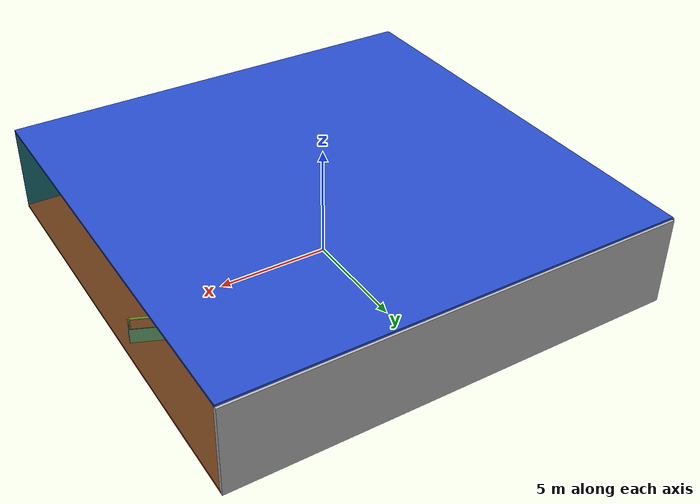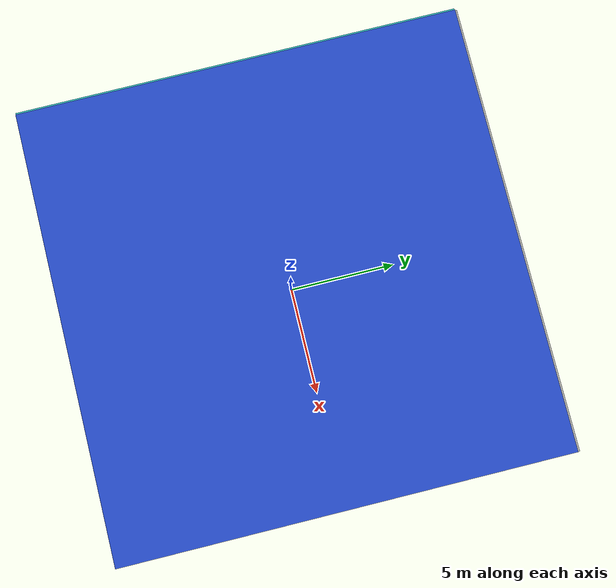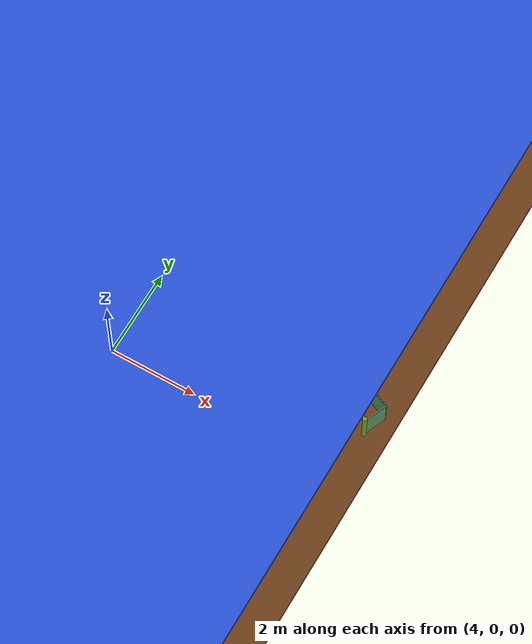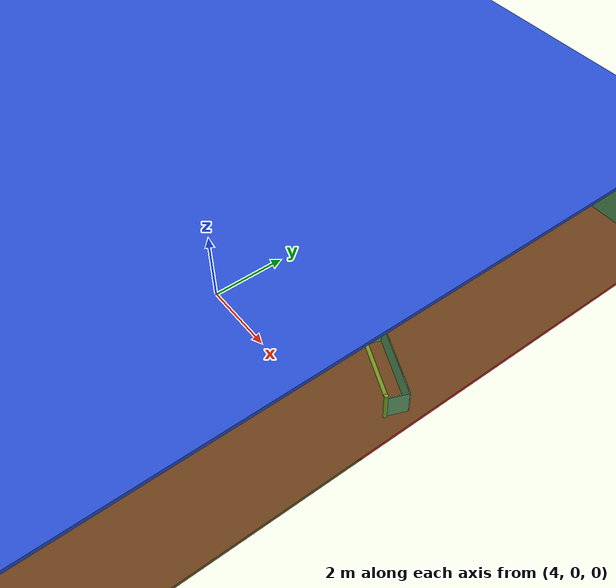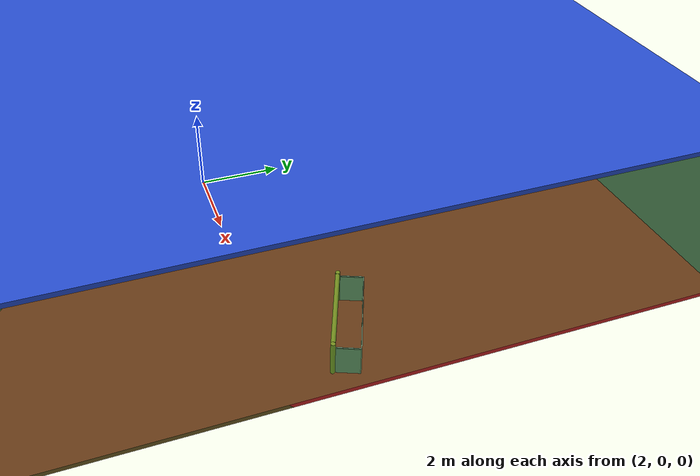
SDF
<sdf version="1.4">
 <world name="default">
  <physics type="ode">
   <max_step_size>0.001</max_step_size>
   <real_time_factor>1</real_time_factor>
   <real_time_update_rate>1000</real_time_update_rate>
   <gravity>0 0 -9.8</gravity>
  </physics>
  <scene><ambient>0.4 0.4 0.4 1</ambient><background>0.7 0.7 0.7 1</background><shadows>1</shadows></scene>
  <model name="Surrounding">
   <static>1</static>
   <link name="Ceiling">
    <collision name="Ceiling_Collision"><geometry><box><size>20 20 0.1</size></box></geometry></collision>
    <visual name="Ceiling_Visual">
     <geometry><box><size>20 20 0.1</size></box></geometry>
     <material>
      <script><uri>file://media/materials/scripts/gazebo.material</uri><name>Gazebo/Blue</name></script>
     </material>
    </visual>
    <pose>0 0 4.05 0 0 0</pose>
   </link>
   <link name="Wall_South">
    <collision name="Wall_South_Collision">
     <geometry><box><size>20 0 4</size></box></geometry>
     <pose>0 0 2 0 -0 0</pose>
    </collision>
    <visual name="Wall_South_Visual">
     <pose>0 0 2 0 -0 0</pose>
     <geometry><box><size>20 0 4</size></box></geometry>
     <material>
      <script><uri>file://media/materials/scripts/gazebo.material</uri><name>Gazebo/Blue</name></script>
     </material>
    </visual>
    <velocity_decay><linear>0</linear><angular>0</angular></velocity_decay>
    <pose>0 -10 0 0 -0 0</pose>
   </link>
   <link name="Wall_East">
    <collision name="Wall_21_Collision">
     <geometry><box><size>20 0 4</size></box></geometry>
     <pose>0 0 2 0 -0 0</pose>
    </collision>
    <visual name="Wall_21_Visual">
     <pose>0 0 2 0 -0 0</pose>
     <geometry><box><size>20 0 4</size></box></geometry>
     <material>
      <script><uri>file://media/materials/scripts/gazebo.material</uri><name>Gazebo/GreenTransparent</name></script>
     </material>
    </visual>
    <velocity_decay><linear>0</linear><angular>0</angular></velocity_decay>
    <pose>10 0 0 0 -0 1.5708</pose>
   </link>
   <link name="Wall_North">
    <collision name="Wall_22_Collision">
     <geometry><box><size>20 0.2 4</size></box></geometry>
     <pose>0 0 2 0 -0 0</pose>
    </collision>
    <visual name="Wall_22_Visual">
     <pose>0 0 2 0 -0 0</pose>
     <geometry><box><size>20 0.2 4</size></box></geometry>
     <material>
      <script><uri>file://media/materials/scripts/gazebo.material</uri><name>Gazebo/JointAnchor</name></script>
     </material>
    </visual>
    <velocity_decay><linear>0</linear><angular>0</angular></velocity_decay>
    <pose>0 10 0 0 -0 0</pose>
   </link>
   <link name="Wall_West">
    <collision name="Wall_23_Collision">
     <geometry><box><size>20 0.2 4</size></box></geometry>
     <pose>0 0 2 0 -0 0</pose>
    </collision>
    <visual name="Wall_23_Visual">
     <pose>0 0 2 0 -0 0</pose>
     <geometry><box><size>20 0.2 4</size></box></geometry>
     <material>
      <script>
       <uri>file://media/materials/scripts/gazebo.material</uri>
       <name>Gazebo/TurquoiseGlowOutline</name>
      </script>
     </material>
    </visual>
    <velocity_decay><linear>0</linear><angular>0</angular></velocity_decay>
    <pose>-10 0 0 0 0 -1.5708</pose>
   </link>
   <link name="Ground_link">
    <collision name="collision">
     <pose>0 0 .05 0 -0 0</pose>
     <geometry><box><size>20 20 0.1</size></box></geometry>
    </collision>
    <visual name="visual">
     <pose>0 0 .05 0 -0 0</pose>
     <geometry><box><size>20 20 0.1</size></box></geometry>
     <material>
      <script><uri>file://media/materials/scripts/gazebo.material</uri><name>Gazebo/Red</name></script>
     </material>
    </visual>
   </link>
   <static>1</static>
  </model>
  <spherical_coordinates>
   <surface_model>EARTH_WGS84</surface_model>
   <latitude_deg>0</latitude_deg>
   <longitude_deg>0</longitude_deg>
   <elevation>0</elevation>
   <heading_deg>0</heading_deg>
  </spherical_coordinates>
  <light name="lightball_0" type="diffuse">
   <diffuse>0.8 0.8 0.8 1</diffuse>
   <specular>0.2 0.2 0.2 1</specular>
   <attenuation>
    <range>100</range>
    <constant>0.7</constant>
    <linear>0.01</linear>
    <quadratic>0.001</quadratic>
   </attenuation>
   <direction>-0.5 0.1 -0.9</direction>
   <pose>3.50119790931 5.32081470234 2.78512986064 0 0 0</pose>
  </light>
  <light name="lightball_1" type="diffuse">
   <diffuse>0.8 0.8 0.8 1</diffuse>
   <specular>0.2 0.2 0.2 1</specular>
   <attenuation>
    <range>100</range>
    <constant>0.7</constant>
    <linear>0.01</linear>
    <quadratic>0.001</quadratic>
   </attenuation>
   <direction>-0.5 0.1 -0.9</direction>
   <pose>8.44965424475 8.66184790852 2.36571325492 0 0 0</pose>
  </light>
  <light name="lightball_2" type="diffuse">
   <diffuse>0.8 0.8 0.8 1</diffuse>
   <specular>0.2 0.2 0.2 1</specular>
   <attenuation>
    <range>100</range>
    <constant>0.7</constant>
    <linear>0.01</linear>
    <quadratic>0.001</quadratic>
   </attenuation>
   <direction>-0.5 0.1 -0.9</direction>
   <pose>-0.836341232605 -7.22521927968 1.11066572019 0 0 0</pose>
  </light>
  <light name="lightball_3" type="diffuse">
   <diffuse>0.8 0.8 0.8 1</diffuse>
   <specular>0.2 0.2 0.2 1</specular>
   <attenuation>
    <range>100</range>
    <constant>0.7</constant>
    <linear>0.01</linear>
    <quadratic>0.001</quadratic>
   </attenuation>
   <direction>-0.5 0.1 -0.9</direction>
   <pose>-4.23012802737 -2.10612162769 3.15321935908 0 0 0</pose>
  </light>
  <light name="lightball_4" type="diffuse">
   <diffuse>0.8 0.8 0.8 1</diffuse>
   <specular>0.2 0.2 0.2 1</specular>
   <attenuation>
    <range>100</range>
    <constant>0.7</constant>
    <linear>0.01</linear>
    <quadratic>0.001</quadratic>
   </attenuation>
   <direction>-0.5 0.1 -0.9</direction>
   <pose>-5.41193728455 -3.65732487104 1.94917376231 0 0 0</pose>
  </light>
  <light name="lightball_5" type="diffuse">
   <diffuse>0.8 0.8 0.8 1</diffuse>
   <specular>0.2 0.2 0.2 1</specular>
   <attenuation>
    <range>100</range>
    <constant>0.7</constant>
    <linear>0.01</linear>
    <quadratic>0.001</quadratic>
   </attenuation>
   <direction>-0.5 0.1 -0.9</direction>
   <pose>-8.50665162497 5.1799403215 1.39703823342 0 0 0</pose>
  </light>
  <light name="lightball_6" type="diffuse">
   <diffuse>0.8 0.8 0.8 1</diffuse>
   <specular>0.2 0.2 0.2 1</specular>
   <attenuation>
    <range>100</range>
    <constant>0.7</constant>
    <linear>0.01</linear>
    <quadratic>0.001</quadratic>
   </attenuation>
   <direction>-0.5 0.1 -0.9</direction>
   <pose>0.821688425762 9.77636713724 0.696725787968 0 0 0</pose>
  </light>
  <light name="lightball_7" type="diffuse">
   <diffuse>0.8 0.8 0.8 1</diffuse>
   <specular>0.2 0.2 0.2 1</specular>
   <attenuation>
    <range>100</range>
    <constant>0.7</constant>
    <linear>0.01</linear>
    <quadratic>0.001</quadratic>
   </attenuation>
   <direction>-0.5 0.1 -0.9</direction>
   <pose>-1.53489828173 -7.64871548964 3.1236561558 0 0 0</pose>
  </light>
  <light name="lightball_8" type="diffuse">
   <diffuse>0.8 0.8 0.8 1</diffuse>
   <specular>0.2 0.2 0.2 1</specular>
   <attenuation>
    <range>100</range>
    <constant>0.7</constant>
    <linear>0.01</linear>
    <quadratic>0.001</quadratic>
   </attenuation>
   <direction>-0.5 0.1 -0.9</direction>
   <pose>0.837188310258 7.03177478299 1.39508931205 0 0 0</pose>
  </light>
  <include><uri>model://cabinet</uri><pose>1.31443062513 8.53715314175 0 0 0 2.71889063505</pose></include>
  <include><uri>model://cabinet</uri><pose>5.39451395561 -5.46753326484 0 0 0 1.05630085473</pose></include>
  <include>
   <uri>model://robocup_3Dsim_goal</uri>
   <pose>8.51803526767 1.35871587567 0 0 0 1.17446902258</pose>
  </include>
 </world>
</sdf>

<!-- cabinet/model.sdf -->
<sdf version="1.5">
  <model name="cabinet">
    <static>true</static>
    <link name="cabinet_bottom_plate">
      <inertial>
        <pose>0 0 -1 0 0 0</pose>
        <inertia>
          <ixx>2.050000</ixx>
          <ixy>0</ixy>
          <ixz>0</ixz>
          <iyy>2.050000</iyy>
          <iyz>0</iyz>
          <izz>2.050000</izz>
        </inertia>
        <mass>25.000000</mass>
      </inertial>
      <collision name="cabinet_bottom_plate_geom">
        <pose>0 0 0.010000 0 0 0</pose>
        <geometry>
          <box>
            <size>0.450000 0.450000 0.020000</size>
          </box>
        </geometry>
      </collision>
      <visual name="cabinet_bottom_plate_geom_visual">
        <pose>0 0 0.010000 0 0 0</pose>
        <geometry>
          <box>
            <size>0.450000 0.450000 0.020000</size>
          </box>
        </geometry>
        <material>
          <script>
            <uri>model://media/materials/scripts/gazebo.material</uri>
            <name>Gazebo/Wood</name>
          </script>
        </material>
      </visual>
      <collision name="cabinet_bottom_plate_geom_cabinet_back_plate">
        <pose>0.235000 0 0.510000 0 0 0</pose>
        <geometry>
          <box>
            <size>0.020000 0.450000 1.020000</size>
          </box>
        </geometry>
      </collision>
      <visual name="cabinet_bottom_plate_geom_cabinet_back_plate_visual">
        <pose>0.235000 0 0.510000 0 0 0</pose>
        <geometry>
          <box>
            <size>0.020000 0.450000 1.020000</size>
          </box>
        </geometry>
        <material>
          <script>
            <uri>model://media/materials/scripts/gazebo.material</uri>
            <name>Gazebo/Wood</name>
          </script>
        </material>
      </visual>
      <collision name="cabinet_bottom_plate_geom_cabinet_left_plate">
        <pose>0 0.235000 0.510000 0 0 0</pose>
        <geometry>
          <box>
            <size>0.450000 0.020000 1.020000</size>
          </box>
        </geometry>
      </collision>
      <visual name="cabinet_bottom_plate_geom_cabinet_left_plate_visual">
        <pose>0 0.235000 0.510000 0 0 0</pose>
        <geometry>
          <box>
            <size>0.450000 0.020000 1.020000</size>
          </box>
        </geometry>
        <material>
          <script>
            <uri>model://media/materials/scripts/gazebo.material</uri>
            <name>Gazebo/Wood</name>
          </script>
        </material>
      </visual>
      <collision name="cabinet_bottom_plate_geom_cabinet_middle_plate">
        <pose>0 0 0.510000 0 0 0</pose>
        <geometry>
          <box>
            <size>0.450000 0.450000 0.020000</size>
          </box>
        </geometry>
      </collision>
      <visual name="cabinet_bottom_plate_geom_cabinet_middle_plate_visual">
        <pose>0 0 0.510000 0 0 0</pose>
        <geometry>
          <box>
            <size>0.450000 0.450000 0.020000</size>
          </box>
        </geometry>
        <material>
          <script>
            <uri>model://media/materials/scripts/gazebo.material</uri>
            <name>Gazebo/Wood</name>
          </script>
        </material>
      </visual>
      <collision name="cabinet_bottom_plate_geom_cabinet_right_plate">
        <pose>0 -0.235000 0.510000 0 0 0</pose>
        <geometry>
          <box>
            <size>0.450000 0.020000 1.020000</size>
          </box>
        </geometry>
      </collision>
      <visual name="cabinet_bottom_plate_geom_cabinet_right_plate_visual">
        <pose>0 -0.235000 0.510000 0 0 0</pose>
        <geometry>
          <box>
            <size>0.450000 0.020000 1.020000</size>
          </box>
        </geometry>
        <material>
          <script>
            <uri>model://media/materials/scripts/gazebo.material</uri>
            <name>Gazebo/Wood</name>
          </script>
        </material>
      </visual>
      <collision name="cabinet_bottom_plate_geom_cabinet_top_plate">
        <pose>0 0 1.010000 0 0 0</pose>
        <geometry>
          <box>
            <size>0.450000 0.450000 0.020000</size>
          </box>
        </geometry>
      </collision>
      <visual name="cabinet_bottom_plate_geom_cabinet_top_plate_visual">
        <pose>0 0 1.010000 0 0 0</pose>
        <geometry>
          <box>
            <size>0.450000 0.450000 0.020000</size>
          </box>
        </geometry>
        <material>
          <script>
            <uri>model://media/materials/scripts/gazebo.material</uri>
            <name>Gazebo/Wood</name>
          </script>
        </material>
      </visual>
    </link>
  </model>
</sdf>

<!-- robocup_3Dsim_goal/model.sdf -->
<sdf version="1.5">
  <model name="robocup_3d_goal">
    <static>true</static>
    <link name="left_post">
      <pose>0 1.05 0.45 0 0 0</pose>
      <collision name="collision">
        <geometry>
          <cylinder>
            <radius>0.05</radius>
            <length>0.9</length>
          </cylinder>
        </geometry>
      </collision>
      <visual name="visual">
        <geometry>
          <cylinder>
            <radius>0.05</radius>
            <length>0.9</length>
          </cylinder>
        </geometry>
        <material>
          <script>
            <uri>file://media/materials/scripts/gazebo.material</uri>
            <name>Gazebo/ZincYellow</name>
          </script>
        </material>
      </visual>
    </link>
    <link name="left_support_horiz_lower">
      <pose>0.30 1.05 0.01 0 0 0</pose>
      <collision name="collision">
        <geometry>
          <box>
            <size>0.50 0.02 0.02</size>
          </box>
        </geometry>
      </collision>
      <visual name="visual">
        <geometry>
          <box>
            <size>0.50 0.02 0.02</size>
          </box>
        </geometry>
        <material>
          <script>
            <uri>file://media/materials/scripts/gazebo.material</uri>
            <name>Gazebo/White</name>
          </script>
        </material>
      </visual>
    </link>
    <link name="left_support_horiz_upper">
      <pose>0.30 1.05 0.79 0 0 0</pose>
      <collision name="collision">
        <geometry>
          <box>
            <size>0.50 0.02 0.02</size>
          </box>
        </geometry>
      </collision>
      <visual name="visual">
        <geometry>
          <box>
            <size>0.50 0.02 0.02</size>
          </box>
        </geometry>
        <material>
          <script>
            <uri>file://media/materials/scripts/gazebo.material</uri>
            <name>Gazebo/White</name>
          </script>
        </material>
      </visual>
    </link>
    <link name="left_support_vertical">
      <pose>0.56 1.05 0.4 0 1.5708 0</pose>
      <collision name="collision">
        <geometry>
          <box>
            <size>0.80 0.02 0.02</size>
          </box>
        </geometry>
      </collision>
      <visual name="visual">
        <geometry>
          <box>
            <size>0.80 0.02 0.02</size>
          </box>
        </geometry>
        <material>
          <script>
            <uri>file://media/materials/scripts/gazebo.material</uri>
            <name>Gazebo/White</name>
          </script>
        </material>
      </visual>
    </link>
    <link name="right_support_horiz_lower">
      <pose>0.30 -1.05 0.01 0 0 0</pose>
      <collision name="collision">
        <geometry>
          <box>
            <size>0.50 0.02 0.02</size>
          </box>
        </geometry>
      </collision>
      <visual name="visual">
        <geometry>
          <box>
            <size>0.50 0.02 0.02</size>
          </box>
        </geometry>
        <material>
          <script>
            <uri>file://media/materials/scripts/gazebo.material</uri>
            <name>Gazebo/White</name>
          </script>
        </material>
      </visual>
    </link>
    <link name="right_support_horiz_upper">
      <pose>0.30 -1.05 0.79 0 0 0</pose>
      <collision name="collision">
        <geometry>
          <box>
            <size>0.50 0.02 0.02</size>
          </box>
        </geometry>
      </collision>
      <visual name="visual">
        <geometry>
          <box>
            <size>0.50 0.02 0.02</size>
          </box>
        </geometry>
        <material>
          <script>
            <uri>file://media/materials/scripts/gazebo.material</uri>
            <name>Gazebo/White</name>
          </script>
        </material>
      </visual>
    </link>
    <link name="right_support_vertical">
      <pose>0.56 -1.05 0.4 0 1.5708 0</pose>
      <collision name="collision">
        <geometry>
          <box>
            <size>0.80 0.02 0.02</size>
          </box>
        </geometry>
      </collision>
      <visual name="visual">
        <geometry>
          <box>
            <size>0.80 0.02 0.02</size>
          </box>
        </geometry>
        <material>
          <script>
            <uri>file://media/materials/scripts/gazebo.material</uri>
            <name>Gazebo/White</name>
          </script>
        </material>
      </visual>
    </link>
    <link name="center_support_horiz_lower">
      <pose>0.56 0 0.01 0 1.5708 0</pose>
      <collision name="collision">
        <geometry>
          <box>
            <size>0.02 2.08 0.02</size>
          </box>
        </geometry>
      </collision>
      <visual name="visual">
        <geometry>
          <box>
            <size>0.02 2.08 0.02</size>
          </box>
        </geometry>
        <material>
          <script>
            <uri>file://media/materials/scripts/gazebo.material</uri>
            <name>Gazebo/White</name>
          </script>
        </material>
      </visual>
    </link>
    <link name="center_support_horiz_upper">
      <pose>0.56 0 0.79 0 1.5708 0</pose>
      <collision name="collision">
        <geometry>
          <box>
            <size>0.02 2.08 0.02</size>
          </box>
        </geometry>
      </collision>
      <visual name="visual">
        <geometry>
          <box>
            <size>0.02 2.08 0.02</size>
          </box>
        </geometry>
        <material>
          <script>
            <uri>file://media/materials/scripts/gazebo.material</uri>
            <name>Gazebo/White</name>
          </script>
        </material>
      </visual>
    </link>
    <link name="right_post">
      <pose>0 -1.05 0.45 0 0 0</pose>
      <collision name="collision">
        <geometry>
          <cylinder>
            <radius>0.05</radius>
            <length>0.9</length>
          </cylinder>
        </geometry>
      </collision>
      <visual name="visual">
        <geometry>
          <cylinder>
            <radius>0.05</radius>
            <length>0.9</length>
          </cylinder>
        </geometry>
        <material>
          <script>
            <uri>file://media/materials/scripts/gazebo.material</uri>
            <name>Gazebo/ZincYellow</name>
          </script>
        </material>
      </visual>
    </link>
    <link name="crossbar">
      <pose>0 0 0.85 1.57 1.57 0</pose>
      <collision name="collision">
        <geometry>
          <cylinder>
            <radius>0.05</radius>
            <length>2.0</length>
          </cylinder>
        </geometry>
      </collision>
      <visual name="visual">
        <geometry>
          <cylinder>
            <radius>0.05</radius>
            <length>2.0</length>
          </cylinder>
        </geometry>
        <material>
          <script>
            <uri>file://media/materials/scripts/gazebo.material</uri>
            <name>Gazebo/ZincYellow</name>
          </script>
        </material>
      </visual>
    </link>
    <link name="center_net">
      <pose>0.56 0 0.40 0 0 0</pose>
      <collision name="collision">
        <geometry>
          <box>
            <size>0.01 2.1 0.80</size>
          </box>
        </geometry>
      </collision>
      <visual name="visual">
        <geometry>
          <box>
            <size>0.01 2.1 0.80</size>
          </box>
        </geometry>
        <material>
          <script>
            <uri>model://../model_source/models/robocup09_spl_field/materials/scripts/</uri>
            <uri>model://../model_source/models/robocup09_spl_field/materials/textures/</uri>
            <name>RoboCup/Net</name>
          </script>
        </material>
      </visual>
    </link>
    <link name="left_net">
      <pose>0.30 1.05 0.40 0 0 0</pose>
      <collision name="collision">
        <geometry>
          <box>
            <size>0.50 0.01 0.76</size>
          </box>
        </geometry>
      </collision>
      <visual name="visual">
        <geometry>
          <box>
            <size>0.50 0.01 0.76</size>
          </box>
        </geometry>
        <material>
          <script>
            <uri>model://../model_source/models/robocup09_spl_field/materials/scripts/</uri>
            <uri>model://../model_source/models/robocup09_spl_field/materials/textures/</uri>
            <name>RoboCup/Net</name>
          </script>
        </material>
      </visual>
    </link>
    <link name="right_net">
      <pose>0.30 -1.05 0.40 0 0 0</pose>
      <collision name="collision">
        <geometry>
          <box>
            <size>0.50 0.01 0.76</size>
          </box>
        </geometry>
      </collision>
      <visual name="visual">
        <geometry>
          <box>
            <size>0.50 0.01 0.76</size>
          </box>
        </geometry>
        <material>
          <script>
            <uri>model://../model_source/models/robocup09_spl_field/materials/scripts/</uri>
            <uri>model://../model_source/models/robocup09_spl_field/materials/textures/</uri>
            <name>RoboCup/Net</name>
          </script>
        </material>
      </visual>
    </link>
  </model>
</sdf>
